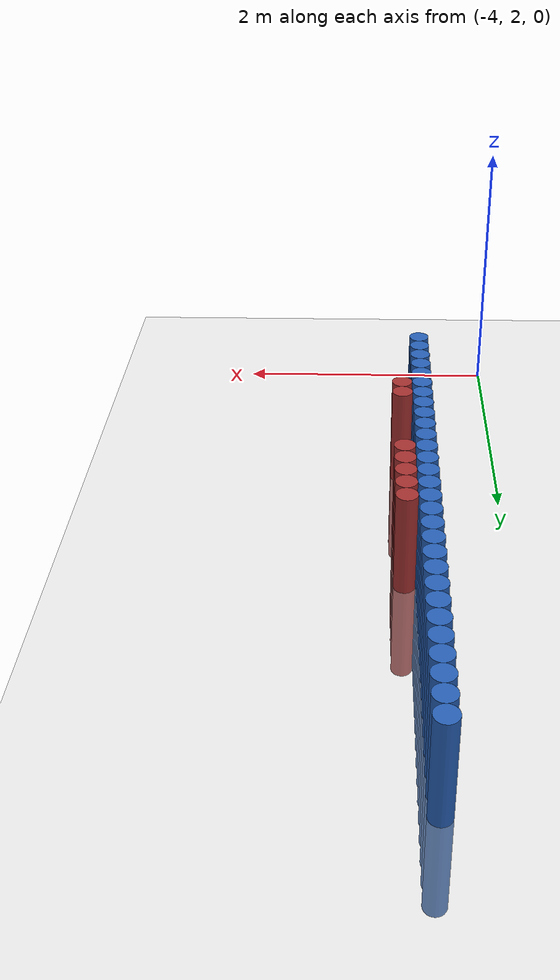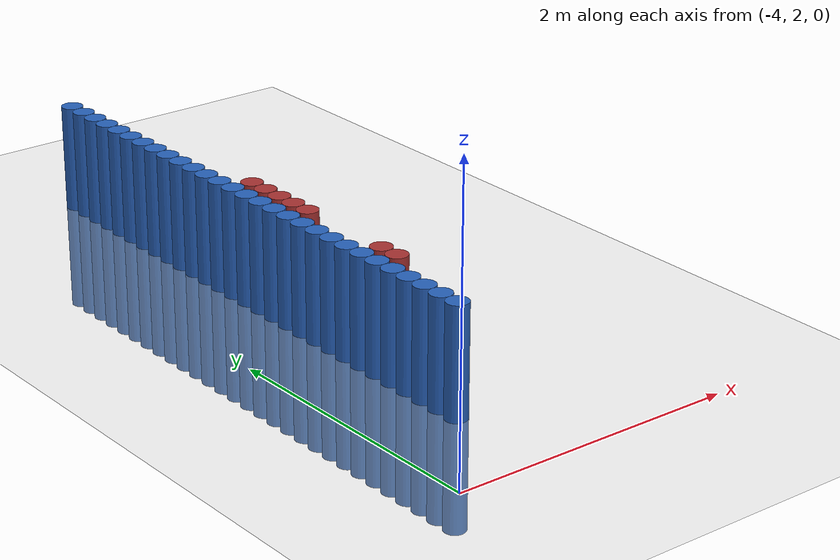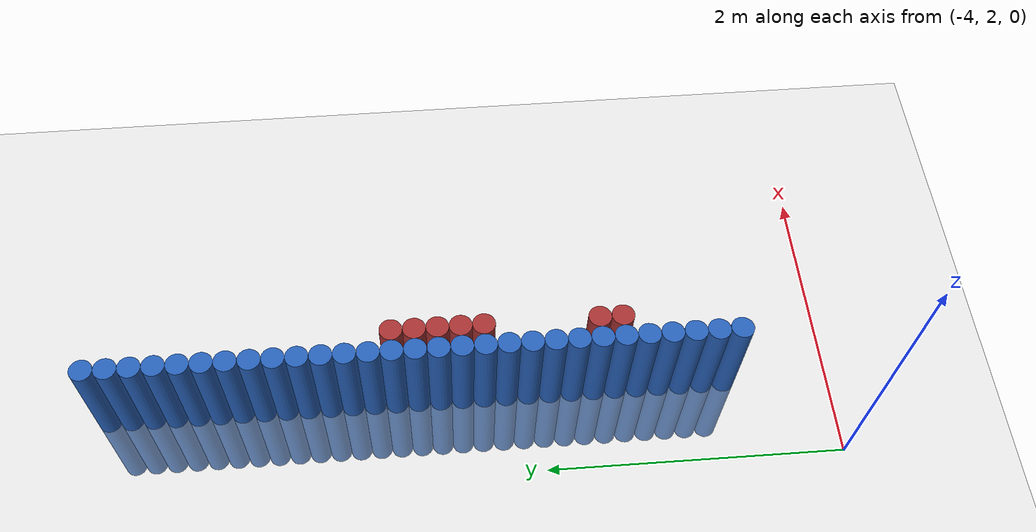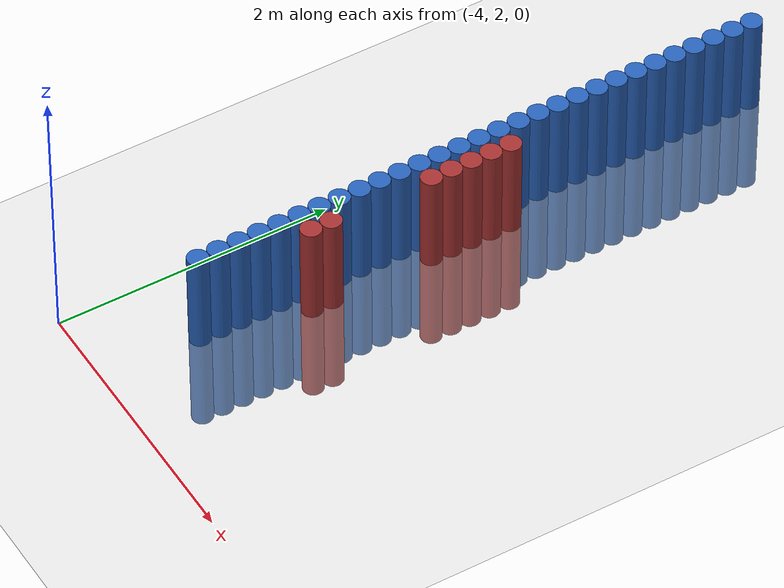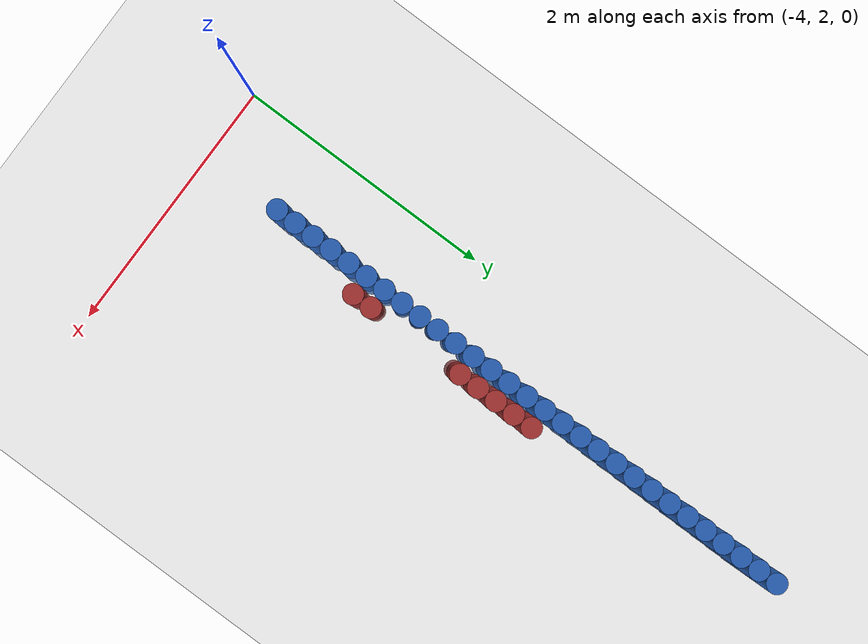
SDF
<sdf version="1.6">
 <world name="default">
  <model name="ground_plane">
   <static>1</static>
   <link name="link">
    <collision name="collision">
     <geometry><plane><normal>0 0 1</normal><size>100 100</size></plane></geometry>
     <surface><friction><ode><mu>100</mu><mu2>50</mu2></ode></friction></surface>
    </collision>
    <visual name="visual">
     <cast_shadows>0</cast_shadows>
     <geometry><plane><normal>0 0 1</normal><size>100 100</size></plane></geometry>
     <material>
      <script><uri>file://media/materials/scripts/gazebo.material</uri><name>Gazebo/Grey</name></script>
     </material>
    </visual>
   </link>
  </model>
  <model name="unit_cylinder_153">
   <static>1</static>
   <pose>-3.425000 2.875000 0.000000 0.000000 0.000000 0.000000</pose>
   <link name="link">
    <inertial>
     <mass>1</mass>
     <inertia><ixx>0.145833</ixx><ixy>0</ixy><ixz>0</ixz><iyy>0.145833</iyy><iyz>0</iyz><izz>0.125</izz></inertia>
    </inertial>
    <collision name="collision">
     <geometry><cylinder><radius>0.075000</radius><length>1.5</length></cylinder></geometry>
    </collision>
    <visual name="visual">
     <geometry><cylinder><radius>0.075000</radius><length>1.5</length></cylinder></geometry>
     <material>
      <ambient>0.152000 0.379000 0.720000 1</ambient>
      <diffuse>0.152000 0.379000 0.720000 1</diffuse>
     </material>
     <material>
      <script><name>Gazebo/Grey</name><uri>file://media/materials/scripts/gazebo.material</uri></script>
     </material>
    </visual>
   </link>
  </model>
  <model name="unit_cylinder_155">
   <static>1</static>
   <pose>-3.425000 3.025000 0.000000 0.000000 0.000000 0.000000</pose>
   <link name="link">
    <inertial>
     <mass>1</mass>
     <inertia><ixx>0.145833</ixx><ixy>0</ixy><ixz>0</ixz><iyy>0.145833</iyy><iyz>0</iyz><izz>0.125</izz></inertia>
    </inertial>
    <collision name="collision">
     <geometry><cylinder><radius>0.075000</radius><length>1.5</length></cylinder></geometry>
    </collision>
    <visual name="visual">
     <geometry><cylinder><radius>0.075000</radius><length>1.5</length></cylinder></geometry>
     <material>
      <ambient>0.152000 0.379000 0.720000 1</ambient>
      <diffuse>0.152000 0.379000 0.720000 1</diffuse>
     </material>
     <material>
      <script><name>Gazebo/Grey</name><uri>file://media/materials/scripts/gazebo.material</uri></script>
     </material>
    </visual>
   </link>
  </model>
  <model name="unit_cylinder_157">
   <static>1</static>
   <pose>-3.425000 3.175000 0.000000 0.000000 0.000000 0.000000</pose>
   <link name="link">
    <inertial>
     <mass>1</mass>
     <inertia><ixx>0.145833</ixx><ixy>0</ixy><ixz>0</ixz><iyy>0.145833</iyy><iyz>0</iyz><izz>0.125</izz></inertia>
    </inertial>
    <collision name="collision">
     <geometry><cylinder><radius>0.075000</radius><length>1.5</length></cylinder></geometry>
    </collision>
    <visual name="visual">
     <geometry><cylinder><radius>0.075000</radius><length>1.5</length></cylinder></geometry>
     <material>
      <ambient>0.152000 0.379000 0.720000 1</ambient>
      <diffuse>0.152000 0.379000 0.720000 1</diffuse>
     </material>
     <material>
      <script><name>Gazebo/Grey</name><uri>file://media/materials/scripts/gazebo.material</uri></script>
     </material>
    </visual>
   </link>
  </model>
  <model name="unit_cylinder_159">
   <static>1</static>
   <pose>-3.425000 3.325000 0.000000 0.000000 0.000000 0.000000</pose>
   <link name="link">
    <inertial>
     <mass>1</mass>
     <inertia><ixx>0.145833</ixx><ixy>0</ixy><ixz>0</ixz><iyy>0.145833</iyy><iyz>0</iyz><izz>0.125</izz></inertia>
    </inertial>
    <collision name="collision">
     <geometry><cylinder><radius>0.075000</radius><length>1.5</length></cylinder></geometry>
    </collision>
    <visual name="visual">
     <geometry><cylinder><radius>0.075000</radius><length>1.5</length></cylinder></geometry>
     <material>
      <ambient>0.152000 0.379000 0.720000 1</ambient>
      <diffuse>0.152000 0.379000 0.720000 1</diffuse>
     </material>
     <material>
      <script><name>Gazebo/Grey</name><uri>file://media/materials/scripts/gazebo.material</uri></script>
     </material>
    </visual>
   </link>
  </model>
  <model name="unit_cylinder_161">
   <static>1</static>
   <pose>-3.425000 3.475000 0.000000 0.000000 0.000000 0.000000</pose>
   <link name="link">
    <inertial>
     <mass>1</mass>
     <inertia><ixx>0.145833</ixx><ixy>0</ixy><ixz>0</ixz><iyy>0.145833</iyy><iyz>0</iyz><izz>0.125</izz></inertia>
    </inertial>
    <collision name="collision">
     <geometry><cylinder><radius>0.075000</radius><length>1.5</length></cylinder></geometry>
    </collision>
    <visual name="visual">
     <geometry><cylinder><radius>0.075000</radius><length>1.5</length></cylinder></geometry>
     <material>
      <ambient>0.152000 0.379000 0.720000 1</ambient>
      <diffuse>0.152000 0.379000 0.720000 1</diffuse>
     </material>
     <material>
      <script><name>Gazebo/Grey</name><uri>file://media/materials/scripts/gazebo.material</uri></script>
     </material>
    </visual>
   </link>
  </model>
  <model name="unit_cylinder_163">
   <static>1</static>
   <pose>-3.425000 3.625000 0.000000 0.000000 0.000000 0.000000</pose>
   <link name="link">
    <inertial>
     <mass>1</mass>
     <inertia><ixx>0.145833</ixx><ixy>0</ixy><ixz>0</ixz><iyy>0.145833</iyy><iyz>0</iyz><izz>0.125</izz></inertia>
    </inertial>
    <collision name="collision">
     <geometry><cylinder><radius>0.075000</radius><length>1.5</length></cylinder></geometry>
    </collision>
    <visual name="visual">
     <geometry><cylinder><radius>0.075000</radius><length>1.5</length></cylinder></geometry>
     <material>
      <ambient>0.152000 0.379000 0.720000 1</ambient>
      <diffuse>0.152000 0.379000 0.720000 1</diffuse>
     </material>
     <material>
      <script><name>Gazebo/Grey</name><uri>file://media/materials/scripts/gazebo.material</uri></script>
     </material>
    </visual>
   </link>
  </model>
  <model name="unit_cylinder_165">
   <static>1</static>
   <pose>-3.425000 3.775000 0.000000 0.000000 0.000000 0.000000</pose>
   <link name="link">
    <inertial>
     <mass>1</mass>
     <inertia><ixx>0.145833</ixx><ixy>0</ixy><ixz>0</ixz><iyy>0.145833</iyy><iyz>0</iyz><izz>0.125</izz></inertia>
    </inertial>
    <collision name="collision">
     <geometry><cylinder><radius>0.075000</radius><length>1.5</length></cylinder></geometry>
    </collision>
    <visual name="visual">
     <geometry><cylinder><radius>0.075000</radius><length>1.5</length></cylinder></geometry>
     <material>
      <ambient>0.152000 0.379000 0.720000 1</ambient>
      <diffuse>0.152000 0.379000 0.720000 1</diffuse>
     </material>
     <material>
      <script><name>Gazebo/Grey</name><uri>file://media/materials/scripts/gazebo.material</uri></script>
     </material>
    </visual>
   </link>
  </model>
  <model name="unit_cylinder_167">
   <static>1</static>
   <pose>-3.425000 3.925000 0.000000 0.000000 0.000000 0.000000</pose>
   <link name="link">
    <inertial>
     <mass>1</mass>
     <inertia><ixx>0.145833</ixx><ixy>0</ixy><ixz>0</ixz><iyy>0.145833</iyy><iyz>0</iyz><izz>0.125</izz></inertia>
    </inertial>
    <collision name="collision">
     <geometry><cylinder><radius>0.075000</radius><length>1.5</length></cylinder></geometry>
    </collision>
    <visual name="visual">
     <geometry><cylinder><radius>0.075000</radius><length>1.5</length></cylinder></geometry>
     <material>
      <ambient>0.152000 0.379000 0.720000 1</ambient>
      <diffuse>0.152000 0.379000 0.720000 1</diffuse>
     </material>
     <material>
      <script><name>Gazebo/Grey</name><uri>file://media/materials/scripts/gazebo.material</uri></script>
     </material>
    </visual>
   </link>
  </model>
  <model name="unit_cylinder_169">
   <static>1</static>
   <pose>-3.425000 4.075000 0.000000 0.000000 0.000000 0.000000</pose>
   <link name="link">
    <inertial>
     <mass>1</mass>
     <inertia><ixx>0.145833</ixx><ixy>0</ixy><ixz>0</ixz><iyy>0.145833</iyy><iyz>0</iyz><izz>0.125</izz></inertia>
    </inertial>
    <collision name="collision">
     <geometry><cylinder><radius>0.075000</radius><length>1.5</length></cylinder></geometry>
    </collision>
    <visual name="visual">
     <geometry><cylinder><radius>0.075000</radius><length>1.5</length></cylinder></geometry>
     <material>
      <ambient>0.152000 0.379000 0.720000 1</ambient>
      <diffuse>0.152000 0.379000 0.720000 1</diffuse>
     </material>
     <material>
      <script><name>Gazebo/Grey</name><uri>file://media/materials/scripts/gazebo.material</uri></script>
     </material>
    </visual>
   </link>
  </model>
  <model name="unit_cylinder_171">
   <static>1</static>
   <pose>-3.425000 4.225000 0.000000 0.000000 0.000000 0.000000</pose>
   <link name="link">
    <inertial>
     <mass>1</mass>
     <inertia><ixx>0.145833</ixx><ixy>0</ixy><ixz>0</ixz><iyy>0.145833</iyy><iyz>0</iyz><izz>0.125</izz></inertia>
    </inertial>
    <collision name="collision">
     <geometry><cylinder><radius>0.075000</radius><length>1.5</length></cylinder></geometry>
    </collision>
    <visual name="visual">
     <geometry><cylinder><radius>0.075000</radius><length>1.5</length></cylinder></geometry>
     <material>
      <ambient>0.152000 0.379000 0.720000 1</ambient>
      <diffuse>0.152000 0.379000 0.720000 1</diffuse>
     </material>
     <material>
      <script><name>Gazebo/Grey</name><uri>file://media/materials/scripts/gazebo.material</uri></script>
     </material>
    </visual>
   </link>
  </model>
  <model name="unit_cylinder_173">
   <static>1</static>
   <pose>-3.425000 4.375000 0.000000 0.000000 0.000000 0.000000</pose>
   <link name="link">
    <inertial>
     <mass>1</mass>
     <inertia><ixx>0.145833</ixx><ixy>0</ixy><ixz>0</ixz><iyy>0.145833</iyy><iyz>0</iyz><izz>0.125</izz></inertia>
    </inertial>
    <collision name="collision">
     <geometry><cylinder><radius>0.075000</radius><length>1.5</length></cylinder></geometry>
    </collision>
    <visual name="visual">
     <geometry><cylinder><radius>0.075000</radius><length>1.5</length></cylinder></geometry>
     <material>
      <ambient>0.152000 0.379000 0.720000 1</ambient>
      <diffuse>0.152000 0.379000 0.720000 1</diffuse>
     </material>
     <material>
      <script><name>Gazebo/Grey</name><uri>file://media/materials/scripts/gazebo.material</uri></script>
     </material>
    </visual>
   </link>
  </model>
  <model name="unit_cylinder_175">
   <static>1</static>
   <pose>-3.425000 4.525000 0.000000 0.000000 0.000000 0.000000</pose>
   <link name="link">
    <inertial>
     <mass>1</mass>
     <inertia><ixx>0.145833</ixx><ixy>0</ixy><ixz>0</ixz><iyy>0.145833</iyy><iyz>0</iyz><izz>0.125</izz></inertia>
    </inertial>
    <collision name="collision">
     <geometry><cylinder><radius>0.075000</radius><length>1.5</length></cylinder></geometry>
    </collision>
    <visual name="visual">
     <geometry><cylinder><radius>0.075000</radius><length>1.5</length></cylinder></geometry>
     <material>
      <ambient>0.152000 0.379000 0.720000 1</ambient>
      <diffuse>0.152000 0.379000 0.720000 1</diffuse>
     </material>
     <material>
      <script><name>Gazebo/Grey</name><uri>file://media/materials/scripts/gazebo.material</uri></script>
     </material>
    </visual>
   </link>
  </model>
  <model name="unit_cylinder_177">
   <static>1</static>
   <pose>-3.425000 4.675000 0.000000 0.000000 0.000000 0.000000</pose>
   <link name="link">
    <inertial>
     <mass>1</mass>
     <inertia><ixx>0.145833</ixx><ixy>0</ixy><ixz>0</ixz><iyy>0.145833</iyy><iyz>0</iyz><izz>0.125</izz></inertia>
    </inertial>
    <collision name="collision">
     <geometry><cylinder><radius>0.075000</radius><length>1.5</length></cylinder></geometry>
    </collision>
    <visual name="visual">
     <geometry><cylinder><radius>0.075000</radius><length>1.5</length></cylinder></geometry>
     <material>
      <ambient>0.152000 0.379000 0.720000 1</ambient>
      <diffuse>0.152000 0.379000 0.720000 1</diffuse>
     </material>
     <material>
      <script><name>Gazebo/Grey</name><uri>file://media/materials/scripts/gazebo.material</uri></script>
     </material>
    </visual>
   </link>
  </model>
  <model name="unit_cylinder_179">
   <static>1</static>
   <pose>-3.425000 4.825000 0.000000 0.000000 0.000000 0.000000</pose>
   <link name="link">
    <inertial>
     <mass>1</mass>
     <inertia><ixx>0.145833</ixx><ixy>0</ixy><ixz>0</ixz><iyy>0.145833</iyy><iyz>0</iyz><izz>0.125</izz></inertia>
    </inertial>
    <collision name="collision">
     <geometry><cylinder><radius>0.075000</radius><length>1.5</length></cylinder></geometry>
    </collision>
    <visual name="visual">
     <geometry><cylinder><radius>0.075000</radius><length>1.5</length></cylinder></geometry>
     <material>
      <ambient>0.152000 0.379000 0.720000 1</ambient>
      <diffuse>0.152000 0.379000 0.720000 1</diffuse>
     </material>
     <material>
      <script><name>Gazebo/Grey</name><uri>file://media/materials/scripts/gazebo.material</uri></script>
     </material>
    </visual>
   </link>
  </model>
  <model name="unit_cylinder_181">
   <static>1</static>
   <pose>-3.425000 4.975000 0.000000 0.000000 0.000000 0.000000</pose>
   <link name="link">
    <inertial>
     <mass>1</mass>
     <inertia><ixx>0.145833</ixx><ixy>0</ixy><ixz>0</ixz><iyy>0.145833</iyy><iyz>0</iyz><izz>0.125</izz></inertia>
    </inertial>
    <collision name="collision">
     <geometry><cylinder><radius>0.075000</radius><length>1.5</length></cylinder></geometry>
    </collision>
    <visual name="visual">
     <geometry><cylinder><radius>0.075000</radius><length>1.5</length></cylinder></geometry>
     <material>
      <ambient>0.152000 0.379000 0.720000 1</ambient>
      <diffuse>0.152000 0.379000 0.720000 1</diffuse>
     </material>
     <material>
      <script><name>Gazebo/Grey</name><uri>file://media/materials/scripts/gazebo.material</uri></script>
     </material>
    </visual>
   </link>
  </model>
  <model name="unit_cylinder_183">
   <static>1</static>
   <pose>-3.425000 5.125000 0.000000 0.000000 0.000000 0.000000</pose>
   <link name="link">
    <inertial>
     <mass>1</mass>
     <inertia><ixx>0.145833</ixx><ixy>0</ixy><ixz>0</ixz><iyy>0.145833</iyy><iyz>0</iyz><izz>0.125</izz></inertia>
    </inertial>
    <collision name="collision">
     <geometry><cylinder><radius>0.075000</radius><length>1.5</length></cylinder></geometry>
    </collision>
    <visual name="visual">
     <geometry><cylinder><radius>0.075000</radius><length>1.5</length></cylinder></geometry>
     <material>
      <ambient>0.152000 0.379000 0.720000 1</ambient>
      <diffuse>0.152000 0.379000 0.720000 1</diffuse>
     </material>
     <material>
      <script><name>Gazebo/Grey</name><uri>file://media/materials/scripts/gazebo.material</uri></script>
     </material>
    </visual>
   </link>
  </model>
  <model name="unit_cylinder_185">
   <static>1</static>
   <pose>-3.425000 5.275000 0.000000 0.000000 0.000000 0.000000</pose>
   <link name="link">
    <inertial>
     <mass>1</mass>
     <inertia><ixx>0.145833</ixx><ixy>0</ixy><ixz>0</ixz><iyy>0.145833</iyy><iyz>0</iyz><izz>0.125</izz></inertia>
    </inertial>
    <collision name="collision">
     <geometry><cylinder><radius>0.075000</radius><length>1.5</length></cylinder></geometry>
    </collision>
    <visual name="visual">
     <geometry><cylinder><radius>0.075000</radius><length>1.5</length></cylinder></geometry>
     <material>
      <ambient>0.152000 0.379000 0.720000 1</ambient>
      <diffuse>0.152000 0.379000 0.720000 1</diffuse>
     </material>
     <material>
      <script><name>Gazebo/Grey</name><uri>file://media/materials/scripts/gazebo.material</uri></script>
     </material>
    </visual>
   </link>
  </model>
  <model name="unit_cylinder_187">
   <static>1</static>
   <pose>-3.425000 5.425000 0.000000 0.000000 0.000000 0.000000</pose>
   <link name="link">
    <inertial>
     <mass>1</mass>
     <inertia><ixx>0.145833</ixx><ixy>0</ixy><ixz>0</ixz><iyy>0.145833</iyy><iyz>0</iyz><izz>0.125</izz></inertia>
    </inertial>
    <collision name="collision">
     <geometry><cylinder><radius>0.075000</radius><length>1.5</length></cylinder></geometry>
    </collision>
    <visual name="visual">
     <geometry><cylinder><radius>0.075000</radius><length>1.5</length></cylinder></geometry>
     <material>
      <ambient>0.152000 0.379000 0.720000 1</ambient>
      <diffuse>0.152000 0.379000 0.720000 1</diffuse>
     </material>
     <material>
      <script><name>Gazebo/Grey</name><uri>file://media/materials/scripts/gazebo.material</uri></script>
     </material>
    </visual>
   </link>
  </model>
  <model name="unit_cylinder_189">
   <static>1</static>
   <pose>-3.425000 5.575000 0.000000 0.000000 0.000000 0.000000</pose>
   <link name="link">
    <inertial>
     <mass>1</mass>
     <inertia><ixx>0.145833</ixx><ixy>0</ixy><ixz>0</ixz><iyy>0.145833</iyy><iyz>0</iyz><izz>0.125</izz></inertia>
    </inertial>
    <collision name="collision">
     <geometry><cylinder><radius>0.075000</radius><length>1.5</length></cylinder></geometry>
    </collision>
    <visual name="visual">
     <geometry><cylinder><radius>0.075000</radius><length>1.5</length></cylinder></geometry>
     <material>
      <ambient>0.152000 0.379000 0.720000 1</ambient>
      <diffuse>0.152000 0.379000 0.720000 1</diffuse>
     </material>
     <material>
      <script><name>Gazebo/Grey</name><uri>file://media/materials/scripts/gazebo.material</uri></script>
     </material>
    </visual>
   </link>
  </model>
  <model name="unit_cylinder_191">
   <static>1</static>
   <pose>-3.425000 5.725000 0.000000 0.000000 0.000000 0.000000</pose>
   <link name="link">
    <inertial>
     <mass>1</mass>
     <inertia><ixx>0.145833</ixx><ixy>0</ixy><ixz>0</ixz><iyy>0.145833</iyy><iyz>0</iyz><izz>0.125</izz></inertia>
    </inertial>
    <collision name="collision">
     <geometry><cylinder><radius>0.075000</radius><length>1.5</length></cylinder></geometry>
    </collision>
    <visual name="visual">
     <geometry><cylinder><radius>0.075000</radius><length>1.5</length></cylinder></geometry>
     <material>
      <ambient>0.152000 0.379000 0.720000 1</ambient>
      <diffuse>0.152000 0.379000 0.720000 1</diffuse>
     </material>
     <material>
      <script><name>Gazebo/Grey</name><uri>file://media/materials/scripts/gazebo.material</uri></script>
     </material>
    </visual>
   </link>
  </model>
  <model name="unit_cylinder_193">
   <static>1</static>
   <pose>-3.425000 5.875000 0.000000 0.000000 0.000000 0.000000</pose>
   <link name="link">
    <inertial>
     <mass>1</mass>
     <inertia><ixx>0.145833</ixx><ixy>0</ixy><ixz>0</ixz><iyy>0.145833</iyy><iyz>0</iyz><izz>0.125</izz></inertia>
    </inertial>
    <collision name="collision">
     <geometry><cylinder><radius>0.075000</radius><length>1.5</length></cylinder></geometry>
    </collision>
    <visual name="visual">
     <geometry><cylinder><radius>0.075000</radius><length>1.5</length></cylinder></geometry>
     <material>
      <ambient>0.152000 0.379000 0.720000 1</ambient>
      <diffuse>0.152000 0.379000 0.720000 1</diffuse>
     </material>
     <material>
      <script><name>Gazebo/Grey</name><uri>file://media/materials/scripts/gazebo.material</uri></script>
     </material>
    </visual>
   </link>
  </model>
  <model name="unit_cylinder_195">
   <static>1</static>
   <pose>-3.425000 6.025000 0.000000 0.000000 0.000000 0.000000</pose>
   <link name="link">
    <inertial>
     <mass>1</mass>
     <inertia><ixx>0.145833</ixx><ixy>0</ixy><ixz>0</ixz><iyy>0.145833</iyy><iyz>0</iyz><izz>0.125</izz></inertia>
    </inertial>
    <collision name="collision">
     <geometry><cylinder><radius>0.075000</radius><length>1.5</length></cylinder></geometry>
    </collision>
    <visual name="visual">
     <geometry><cylinder><radius>0.075000</radius><length>1.5</length></cylinder></geometry>
     <material>
      <ambient>0.152000 0.379000 0.720000 1</ambient>
      <diffuse>0.152000 0.379000 0.720000 1</diffuse>
     </material>
     <material>
      <script><name>Gazebo/Grey</name><uri>file://media/materials/scripts/gazebo.material</uri></script>
     </material>
    </visual>
   </link>
  </model>
  <model name="unit_cylinder_197">
   <static>1</static>
   <pose>-3.425000 6.175000 0.000000 0.000000 0.000000 0.000000</pose>
   <link name="link">
    <inertial>
     <mass>1</mass>
     <inertia><ixx>0.145833</ixx><ixy>0</ixy><ixz>0</ixz><iyy>0.145833</iyy><iyz>0</iyz><izz>0.125</izz></inertia>
    </inertial>
    <collision name="collision">
     <geometry><cylinder><radius>0.075000</radius><length>1.5</length></cylinder></geometry>
    </collision>
    <visual name="visual">
     <geometry><cylinder><radius>0.075000</radius><length>1.5</length></cylinder></geometry>
     <material>
      <ambient>0.152000 0.379000 0.720000 1</ambient>
      <diffuse>0.152000 0.379000 0.720000 1</diffuse>
     </material>
     <material>
      <script><name>Gazebo/Grey</name><uri>file://media/materials/scripts/gazebo.material</uri></script>
     </material>
    </visual>
   </link>
  </model>
  <model name="unit_cylinder_199">
   <static>1</static>
   <pose>-3.425000 6.325000 0.000000 0.000000 0.000000 0.000000</pose>
   <link name="link">
    <inertial>
     <mass>1</mass>
     <inertia><ixx>0.145833</ixx><ixy>0</ixy><ixz>0</ixz><iyy>0.145833</iyy><iyz>0</iyz><izz>0.125</izz></inertia>
    </inertial>
    <collision name="collision">
     <geometry><cylinder><radius>0.075000</radius><length>1.5</length></cylinder></geometry>
    </collision>
    <visual name="visual">
     <geometry><cylinder><radius>0.075000</radius><length>1.5</length></cylinder></geometry>
     <material>
      <ambient>0.152000 0.379000 0.720000 1</ambient>
      <diffuse>0.152000 0.379000 0.720000 1</diffuse>
     </material>
     <material>
      <script><name>Gazebo/Grey</name><uri>file://media/materials/scripts/gazebo.material</uri></script>
     </material>
    </visual>
   </link>
  </model>
  <model name="unit_cylinder_201">
   <static>1</static>
   <pose>-3.425000 6.475000 0.000000 0.000000 0.000000 0.000000</pose>
   <link name="link">
    <inertial>
     <mass>1</mass>
     <inertia><ixx>0.145833</ixx><ixy>0</ixy><ixz>0</ixz><iyy>0.145833</iyy><iyz>0</iyz><izz>0.125</izz></inertia>
    </inertial>
    <collision name="collision">
     <geometry><cylinder><radius>0.075000</radius><length>1.5</length></cylinder></geometry>
    </collision>
    <visual name="visual">
     <geometry><cylinder><radius>0.075000</radius><length>1.5</length></cylinder></geometry>
     <material>
      <ambient>0.152000 0.379000 0.720000 1</ambient>
      <diffuse>0.152000 0.379000 0.720000 1</diffuse>
     </material>
     <material>
      <script><name>Gazebo/Grey</name><uri>file://media/materials/scripts/gazebo.material</uri></script>
     </material>
    </visual>
   </link>
  </model>
  <model name="unit_cylinder_203">
   <static>1</static>
   <pose>-3.425000 6.625000 0.000000 0.000000 0.000000 0.000000</pose>
   <link name="link">
    <inertial>
     <mass>1</mass>
     <inertia><ixx>0.145833</ixx><ixy>0</ixy><ixz>0</ixz><iyy>0.145833</iyy><iyz>0</iyz><izz>0.125</izz></inertia>
    </inertial>
    <collision name="collision">
     <geometry><cylinder><radius>0.075000</radius><length>1.5</length></cylinder></geometry>
    </collision>
    <visual name="visual">
     <geometry><cylinder><radius>0.075000</radius><length>1.5</length></cylinder></geometry>
     <material>
      <ambient>0.152000 0.379000 0.720000 1</ambient>
      <diffuse>0.152000 0.379000 0.720000 1</diffuse>
     </material>
     <material>
      <script><name>Gazebo/Grey</name><uri>file://media/materials/scripts/gazebo.material</uri></script>
     </material>
    </visual>
   </link>
  </model>
  <model name="unit_cylinder_205">
   <static>1</static>
   <pose>-3.425000 6.775000 0.000000 0.000000 0.000000 0.000000</pose>
   <link name="link">
    <inertial>
     <mass>1</mass>
     <inertia><ixx>0.145833</ixx><ixy>0</ixy><ixz>0</ixz><iyy>0.145833</iyy><iyz>0</iyz><izz>0.125</izz></inertia>
    </inertial>
    <collision name="collision">
     <geometry><cylinder><radius>0.075000</radius><length>1.5</length></cylinder></geometry>
    </collision>
    <visual name="visual">
     <geometry><cylinder><radius>0.075000</radius><length>1.5</length></cylinder></geometry>
     <material>
      <ambient>0.152000 0.379000 0.720000 1</ambient>
      <diffuse>0.152000 0.379000 0.720000 1</diffuse>
     </material>
     <material>
      <script><name>Gazebo/Grey</name><uri>file://media/materials/scripts/gazebo.material</uri></script>
     </material>
    </visual>
   </link>
  </model>
  <model name="unit_cylinder_207">
   <static>1</static>
   <pose>-3.425000 6.925000 0.000000 0.000000 0.000000 0.000000</pose>
   <link name="link">
    <inertial>
     <mass>1</mass>
     <inertia><ixx>0.145833</ixx><ixy>0</ixy><ixz>0</ixz><iyy>0.145833</iyy><iyz>0</iyz><izz>0.125</izz></inertia>
    </inertial>
    <collision name="collision">
     <geometry><cylinder><radius>0.075000</radius><length>1.5</length></cylinder></geometry>
    </collision>
    <visual name="visual">
     <geometry><cylinder><radius>0.075000</radius><length>1.5</length></cylinder></geometry>
     <material>
      <ambient>0.152000 0.379000 0.720000 1</ambient>
      <diffuse>0.152000 0.379000 0.720000 1</diffuse>
     </material>
     <material>
      <script><name>Gazebo/Grey</name><uri>file://media/materials/scripts/gazebo.material</uri></script>
     </material>
    </visual>
   </link>
  </model>
  <model name="unit_cylinder_239">
   <static>1</static>
   <pose>-3.425000 2.725000 0.000000 0.000000 0.000000 0.000000</pose>
   <link name="link">
    <inertial>
     <mass>1</mass>
     <inertia><ixx>0.145833</ixx><ixy>0</ixy><ixz>0</ixz><iyy>0.145833</iyy><iyz>0</iyz><izz>0.125</izz></inertia>
    </inertial>
    <collision name="collision">
     <geometry><cylinder><radius>0.075000</radius><length>1.5</length></cylinder></geometry>
    </collision>
    <visual name="visual">
     <geometry><cylinder><radius>0.075000</radius><length>1.5</length></cylinder></geometry>
     <material>
      <ambient>0.152000 0.379000 0.720000 1</ambient>
      <diffuse>0.152000 0.379000 0.720000 1</diffuse>
     </material>
     <material>
      <script><name>Gazebo/Grey</name><uri>file://media/materials/scripts/gazebo.material</uri></script>
     </material>
    </visual>
   </link>
  </model>
  <model name="unit_cylinder_240">
   <static>1</static>
   <pose>-3.425000 2.875000 0.000000 0.000000 0.000000 0.000000</pose>
   <link name="link">
    <inertial>
     <mass>1</mass>
     <inertia><ixx>0.145833</ixx><ixy>0</ixy><ixz>0</ixz><iyy>0.145833</iyy><iyz>0</iyz><izz>0.125</izz></inertia>
    </inertial>
    <collision name="collision">
     <geometry><cylinder><radius>0.075000</radius><length>1.5</length></cylinder></geometry>
    </collision>
    <visual name="visual">
     <geometry><cylinder><radius>0.075000</radius><length>1.5</length></cylinder></geometry>
     <material>
      <ambient>0.152000 0.379000 0.720000 1</ambient>
      <diffuse>0.152000 0.379000 0.720000 1</diffuse>
     </material>
     <material>
      <script><name>Gazebo/Grey</name><uri>file://media/materials/scripts/gazebo.material</uri></script>
     </material>
    </visual>
   </link>
  </model>
  <model name="unit_cylinder_241">
   <static>1</static>
   <pose>-3.425000 3.025000 0.000000 0.000000 0.000000 0.000000</pose>
   <link name="link">
    <inertial>
     <mass>1</mass>
     <inertia><ixx>0.145833</ixx><ixy>0</ixy><ixz>0</ixz><iyy>0.145833</iyy><iyz>0</iyz><izz>0.125</izz></inertia>
    </inertial>
    <collision name="collision">
     <geometry><cylinder><radius>0.075000</radius><length>1.5</length></cylinder></geometry>
    </collision>
    <visual name="visual">
     <geometry><cylinder><radius>0.075000</radius><length>1.5</length></cylinder></geometry>
     <material>
      <ambient>0.152000 0.379000 0.720000 1</ambient>
      <diffuse>0.152000 0.379000 0.720000 1</diffuse>
     </material>
     <material>
      <script><name>Gazebo/Grey</name><uri>file://media/materials/scripts/gazebo.material</uri></script>
     </material>
    </visual>
   </link>
  </model>
  <model name="unit_cylinder_242">
   <static>1</static>
   <pose>-3.425000 3.175000 0.000000 0.000000 0.000000 0.000000</pose>
   <link name="link">
    <inertial>
     <mass>1</mass>
     <inertia><ixx>0.145833</ixx><ixy>0</ixy><ixz>0</ixz><iyy>0.145833</iyy><iyz>0</iyz><izz>0.125</izz></inertia>
    </inertial>
    <collision name="collision">
     <geometry><cylinder><radius>0.075000</radius><length>1.5</length></cylinder></geometry>
    </collision>
    <visual name="visual">
     <geometry><cylinder><radius>0.075000</radius><length>1.5</length></cylinder></geometry>
     <material>
      <ambient>0.152000 0.379000 0.720000 1</ambient>
      <diffuse>0.152000 0.379000 0.720000 1</diffuse>
     </material>
     <material>
      <script><name>Gazebo/Grey</name><uri>file://media/materials/scripts/gazebo.material</uri></script>
     </material>
    </visual>
   </link>
  </model>
  <model name="unit_cylinder_243">
   <static>1</static>
   <pose>-3.425000 3.325000 0.000000 0.000000 0.000000 0.000000</pose>
   <link name="link">
    <inertial>
     <mass>1</mass>
     <inertia><ixx>0.145833</ixx><ixy>0</ixy><ixz>0</ixz><iyy>0.145833</iyy><iyz>0</iyz><izz>0.125</izz></inertia>
    </inertial>
    <collision name="collision">
     <geometry><cylinder><radius>0.075000</radius><length>1.5</length></cylinder></geometry>
    </collision>
    <visual name="visual">
     <geometry><cylinder><radius>0.075000</radius><length>1.5</length></cylinder></geometry>
     <material>
      <ambient>0.152000 0.379000 0.720000 1</ambient>
      <diffuse>0.152000 0.379000 0.720000 1</diffuse>
     </material>
     <material>
      <script><name>Gazebo/Grey</name><uri>file://media/materials/scripts/gazebo.material</uri></script>
     </material>
    </visual>
   </link>
  </model>
  <model name="unit_cylinder_244">
   <static>1</static>
   <pose>-3.425000 3.475000 0.000000 0.000000 0.000000 0.000000</pose>
   <link name="link">
    <inertial>
     <mass>1</mass>
     <inertia><ixx>0.145833</ixx><ixy>0</ixy><ixz>0</ixz><iyy>0.145833</iyy><iyz>0</iyz><izz>0.125</izz></inertia>
    </inertial>
    <collision name="collision">
     <geometry><cylinder><radius>0.075000</radius><length>1.5</length></cylinder></geometry>
    </collision>
    <visual name="visual">
     <geometry><cylinder><radius>0.075000</radius><length>1.5</length></cylinder></geometry>
     <material>
      <ambient>0.152000 0.379000 0.720000 1</ambient>
      <diffuse>0.152000 0.379000 0.720000 1</diffuse>
     </material>
     <material>
      <script><name>Gazebo/Grey</name><uri>file://media/materials/scripts/gazebo.material</uri></script>
     </material>
    </visual>
   </link>
  </model>
  <model name="unit_cylinder_245">
   <static>1</static>
   <pose>-3.425000 3.625000 0.000000 0.000000 0.000000 0.000000</pose>
   <link name="link">
    <inertial>
     <mass>1</mass>
     <inertia><ixx>0.145833</ixx><ixy>0</ixy><ixz>0</ixz><iyy>0.145833</iyy><iyz>0</iyz><izz>0.125</izz></inertia>
    </inertial>
    <collision name="collision">
     <geometry><cylinder><radius>0.075000</radius><length>1.5</length></cylinder></geometry>
    </collision>
    <visual name="visual">
     <geometry><cylinder><radius>0.075000</radius><length>1.5</length></cylinder></geometry>
     <material>
      <ambient>0.152000 0.379000 0.720000 1</ambient>
      <diffuse>0.152000 0.379000 0.720000 1</diffuse>
     </material>
     <material>
      <script><name>Gazebo/Grey</name><uri>file://media/materials/scripts/gazebo.material</uri></script>
     </material>
    </visual>
   </link>
  </model>
  <model name="unit_cylinder_246">
   <static>1</static>
   <pose>-3.425000 3.775000 0.000000 0.000000 0.000000 0.000000</pose>
   <link name="link">
    <inertial>
     <mass>1</mass>
     <inertia><ixx>0.145833</ixx><ixy>0</ixy><ixz>0</ixz><iyy>0.145833</iyy><iyz>0</iyz><izz>0.125</izz></inertia>
    </inertial>
    <collision name="collision">
     <geometry><cylinder><radius>0.075000</radius><length>1.5</length></cylinder></geometry>
    </collision>
    <visual name="visual">
     <geometry><cylinder><radius>0.075000</radius><length>1.5</length></cylinder></geometry>
     <material>
      <ambient>0.152000 0.379000 0.720000 1</ambient>
      <diffuse>0.152000 0.379000 0.720000 1</diffuse>
     </material>
     <material>
      <script><name>Gazebo/Grey</name><uri>file://media/materials/scripts/gazebo.material</uri></script>
     </material>
    </visual>
   </link>
  </model>
  <model name="unit_cylinder_247">
   <static>1</static>
   <pose>-3.425000 3.925000 0.000000 0.000000 0.000000 0.000000</pose>
   <link name="link">
    <inertial>
     <mass>1</mass>
     <inertia><ixx>0.145833</ixx><ixy>0</ixy><ixz>0</ixz><iyy>0.145833</iyy><iyz>0</iyz><izz>0.125</izz></inertia>
    </inertial>
    <collision name="collision">
     <geometry><cylinder><radius>0.075000</radius><length>1.5</length></cylinder></geometry>
    </collision>
    <visual name="visual">
     <geometry><cylinder><radius>0.075000</radius><length>1.5</length></cylinder></geometry>
     <material>
      <ambient>0.152000 0.379000 0.720000 1</ambient>
      <diffuse>0.152000 0.379000 0.720000 1</diffuse>
     </material>
     <material>
      <script><name>Gazebo/Grey</name><uri>file://media/materials/scripts/gazebo.material</uri></script>
     </material>
    </visual>
   </link>
  </model>
  <model name="unit_cylinder_248">
   <static>1</static>
   <pose>-3.425000 4.075000 0.000000 0.000000 0.000000 0.000000</pose>
   <link name="link">
    <inertial>
     <mass>1</mass>
     <inertia><ixx>0.145833</ixx><ixy>0</ixy><ixz>0</ixz><iyy>0.145833</iyy><iyz>0</iyz><izz>0.125</izz></inertia>
    </inertial>
    <collision name="collision">
     <geometry><cylinder><radius>0.075000</radius><length>1.5</length></cylinder></geometry>
    </collision>
    <visual name="visual">
     <geometry><cylinder><radius>0.075000</radius><length>1.5</length></cylinder></geometry>
     <material>
      <ambient>0.152000 0.379000 0.720000 1</ambient>
      <diffuse>0.152000 0.379000 0.720000 1</diffuse>
     </material>
     <material>
      <script><name>Gazebo/Grey</name><uri>file://media/materials/scripts/gazebo.material</uri></script>
     </material>
    </visual>
   </link>
  </model>
  <model name="unit_cylinder_249">
   <static>1</static>
   <pose>-3.425000 4.225000 0.000000 0.000000 0.000000 0.000000</pose>
   <link name="link">
    <inertial>
     <mass>1</mass>
     <inertia><ixx>0.145833</ixx><ixy>0</ixy><ixz>0</ixz><iyy>0.145833</iyy><iyz>0</iyz><izz>0.125</izz></inertia>
    </inertial>
    <collision name="collision">
     <geometry><cylinder><radius>0.075000</radius><length>1.5</length></cylinder></geometry>
    </collision>
    <visual name="visual">
     <geometry><cylinder><radius>0.075000</radius><length>1.5</length></cylinder></geometry>
     <material>
      <ambient>0.152000 0.379000 0.720000 1</ambient>
      <diffuse>0.152000 0.379000 0.720000 1</diffuse>
     </material>
     <material>
      <script><name>Gazebo/Grey</name><uri>file://media/materials/scripts/gazebo.material</uri></script>
     </material>
    </visual>
   </link>
  </model>
  <model name="unit_cylinder_250">
   <static>1</static>
   <pose>-3.425000 4.375000 0.000000 0.000000 0.000000 0.000000</pose>
   <link name="link">
    <inertial>
     <mass>1</mass>
     <inertia><ixx>0.145833</ixx><ixy>0</ixy><ixz>0</ixz><iyy>0.145833</iyy><iyz>0</iyz><izz>0.125</izz></inertia>
    </inertial>
    <collision name="collision">
     <geometry><cylinder><radius>0.075000</radius><length>1.5</length></cylinder></geometry>
    </collision>
    <visual name="visual">
     <geometry><cylinder><radius>0.075000</radius><length>1.5</length></cylinder></geometry>
     <material>
      <ambient>0.152000 0.379000 0.720000 1</ambient>
      <diffuse>0.152000 0.379000 0.720000 1</diffuse>
     </material>
     <material>
      <script><name>Gazebo/Grey</name><uri>file://media/materials/scripts/gazebo.material</uri></script>
     </material>
    </visual>
   </link>
  </model>
  <model name="unit_cylinder_251">
   <static>1</static>
   <pose>-3.425000 4.525000 0.000000 0.000000 0.000000 0.000000</pose>
   <link name="link">
    <inertial>
     <mass>1</mass>
     <inertia><ixx>0.145833</ixx><ixy>0</ixy><ixz>0</ixz><iyy>0.145833</iyy><iyz>0</iyz><izz>0.125</izz></inertia>
    </inertial>
    <collision name="collision">
     <geometry><cylinder><radius>0.075000</radius><length>1.5</length></cylinder></geometry>
    </collision>
    <visual name="visual">
     <geometry><cylinder><radius>0.075000</radius><length>1.5</length></cylinder></geometry>
     <material>
      <ambient>0.152000 0.379000 0.720000 1</ambient>
      <diffuse>0.152000 0.379000 0.720000 1</diffuse>
     </material>
     <material>
      <script><name>Gazebo/Grey</name><uri>file://media/materials/scripts/gazebo.material</uri></script>
     </material>
    </visual>
   </link>
  </model>
  <model name="unit_cylinder_252">
   <static>1</static>
   <pose>-3.425000 4.675000 0.000000 0.000000 0.000000 0.000000</pose>
   <link name="link">
    <inertial>
     <mass>1</mass>
     <inertia><ixx>0.145833</ixx><ixy>0</ixy><ixz>0</ixz><iyy>0.145833</iyy><iyz>0</iyz><izz>0.125</izz></inertia>
    </inertial>
    <collision name="collision">
     <geometry><cylinder><radius>0.075000</radius><length>1.5</length></cylinder></geometry>
    </collision>
    <visual name="visual">
     <geometry><cylinder><radius>0.075000</radius><length>1.5</length></cylinder></geometry>
     <material>
      <ambient>0.152000 0.379000 0.720000 1</ambient>
      <diffuse>0.152000 0.379000 0.720000 1</diffuse>
     </material>
     <material>
      <script><name>Gazebo/Grey</name><uri>file://media/materials/scripts/gazebo.material</uri></script>
     </material>
    </visual>
   </link>
  </model>
  <model name="unit_cylinder_253">
   <static>1</static>
   <pose>-3.425000 4.825000 0.000000 0.000000 0.000000 0.000000</pose>
   <link name="link">
    <inertial>
     <mass>1</mass>
     <inertia><ixx>0.145833</ixx><ixy>0</ixy><ixz>0</ixz><iyy>0.145833</iyy><iyz>0</iyz><izz>0.125</izz></inertia>
    </inertial>
    <collision name="collision">
     <geometry><cylinder><radius>0.075000</radius><length>1.5</length></cylinder></geometry>
    </collision>
    <visual name="visual">
     <geometry><cylinder><radius>0.075000</radius><length>1.5</length></cylinder></geometry>
     <material>
      <ambient>0.152000 0.379000 0.720000 1</ambient>
      <diffuse>0.152000 0.379000 0.720000 1</diffuse>
     </material>
     <material>
      <script><name>Gazebo/Grey</name><uri>file://media/materials/scripts/gazebo.material</uri></script>
     </material>
    </visual>
   </link>
  </model>
  <model name="unit_cylinder_254">
   <static>1</static>
   <pose>-3.425000 4.975000 0.000000 0.000000 0.000000 0.000000</pose>
   <link name="link">
    <inertial>
     <mass>1</mass>
     <inertia><ixx>0.145833</ixx><ixy>0</ixy><ixz>0</ixz><iyy>0.145833</iyy><iyz>0</iyz><izz>0.125</izz></inertia>
    </inertial>
    <collision name="collision">
     <geometry><cylinder><radius>0.075000</radius><length>1.5</length></cylinder></geometry>
    </collision>
    <visual name="visual">
     <geometry><cylinder><radius>0.075000</radius><length>1.5</length></cylinder></geometry>
     <material>
      <ambient>0.152000 0.379000 0.720000 1</ambient>
      <diffuse>0.152000 0.379000 0.720000 1</diffuse>
     </material>
     <material>
      <script><name>Gazebo/Grey</name><uri>file://media/materials/scripts/gazebo.material</uri></script>
     </material>
    </visual>
   </link>
  </model>
  <model name="unit_cylinder_255">
   <static>1</static>
   <pose>-3.425000 5.125000 0.000000 0.000000 0.000000 0.000000</pose>
   <link name="link">
    <inertial>
     <mass>1</mass>
     <inertia><ixx>0.145833</ixx><ixy>0</ixy><ixz>0</ixz><iyy>0.145833</iyy><iyz>0</iyz><izz>0.125</izz></inertia>
    </inertial>
    <collision name="collision">
     <geometry><cylinder><radius>0.075000</radius><length>1.5</length></cylinder></geometry>
    </collision>
    <visual name="visual">
     <geometry><cylinder><radius>0.075000</radius><length>1.5</length></cylinder></geometry>
     <material>
      <ambient>0.152000 0.379000 0.720000 1</ambient>
      <diffuse>0.152000 0.379000 0.720000 1</diffuse>
     </material>
     <material>
      <script><name>Gazebo/Grey</name><uri>file://media/materials/scripts/gazebo.material</uri></script>
     </material>
    </visual>
   </link>
  </model>
  <model name="unit_cylinder_256">
   <static>1</static>
   <pose>-3.425000 5.275000 0.000000 0.000000 0.000000 0.000000</pose>
   <link name="link">
    <inertial>
     <mass>1</mass>
     <inertia><ixx>0.145833</ixx><ixy>0</ixy><ixz>0</ixz><iyy>0.145833</iyy><iyz>0</iyz><izz>0.125</izz></inertia>
    </inertial>
    <collision name="collision">
     <geometry><cylinder><radius>0.075000</radius><length>1.5</length></cylinder></geometry>
    </collision>
    <visual name="visual">
     <geometry><cylinder><radius>0.075000</radius><length>1.5</length></cylinder></geometry>
     <material>
      <ambient>0.152000 0.379000 0.720000 1</ambient>
      <diffuse>0.152000 0.379000 0.720000 1</diffuse>
     </material>
     <material>
      <script><name>Gazebo/Grey</name><uri>file://media/materials/scripts/gazebo.material</uri></script>
     </material>
    </visual>
   </link>
  </model>
  <model name="unit_cylinder_257">
   <static>1</static>
   <pose>-3.425000 5.425000 0.000000 0.000000 0.000000 0.000000</pose>
   <link name="link">
    <inertial>
     <mass>1</mass>
     <inertia><ixx>0.145833</ixx><ixy>0</ixy><ixz>0</ixz><iyy>0.145833</iyy><iyz>0</iyz><izz>0.125</izz></inertia>
    </inertial>
    <collision name="collision">
     <geometry><cylinder><radius>0.075000</radius><length>1.5</length></cylinder></geometry>
    </collision>
    <visual name="visual">
     <geometry><cylinder><radius>0.075000</radius><length>1.5</length></cylinder></geometry>
     <material>
      <ambient>0.152000 0.379000 0.720000 1</ambient>
      <diffuse>0.152000 0.379000 0.720000 1</diffuse>
     </material>
     <material>
      <script><name>Gazebo/Grey</name><uri>file://media/materials/scripts/gazebo.material</uri></script>
     </material>
    </visual>
   </link>
  </model>
  <model name="unit_cylinder_271">
   <static>1</static>
   <pose>-3.275000 3.475000 0.000000 0.000000 0.000000 0.000000</pose>
   <link name="link">
    <inertial>
     <mass>1</mass>
     <inertia><ixx>0.145833</ixx><ixy>0</ixy><ixz>0</ixz><iyy>0.145833</iyy><iyz>0</iyz><izz>0.125</izz></inertia>
    </inertial>
    <collision name="collision">
     <geometry><cylinder><radius>0.075000</radius><length>1.5</length></cylinder></geometry>
    </collision>
    <visual name="visual">
     <geometry><cylinder><radius>0.075000</radius><length>1.5</length></cylinder></geometry>
     <material>
      <ambient>0.648000 0.192000 0.192000 1</ambient>
      <diffuse>0.648000 0.192000 0.192000 1</diffuse>
     </material>
     <material>
      <script><name>Gazebo/Grey</name><uri>file://media/materials/scripts/gazebo.material</uri></script>
     </material>
    </visual>
   </link>
  </model>
  <model name="unit_cylinder_272">
   <static>1</static>
   <pose>-3.275000 3.625000 0.000000 0.000000 0.000000 0.000000</pose>
   <link name="link">
    <inertial>
     <mass>1</mass>
     <inertia><ixx>0.145833</ixx><ixy>0</ixy><ixz>0</ixz><iyy>0.145833</iyy><iyz>0</iyz><izz>0.125</izz></inertia>
    </inertial>
    <collision name="collision">
     <geometry><cylinder><radius>0.075000</radius><length>1.5</length></cylinder></geometry>
    </collision>
    <visual name="visual">
     <geometry><cylinder><radius>0.075000</radius><length>1.5</length></cylinder></geometry>
     <material>
      <ambient>0.648000 0.192000 0.192000 1</ambient>
      <diffuse>0.648000 0.192000 0.192000 1</diffuse>
     </material>
     <material>
      <script><name>Gazebo/Grey</name><uri>file://media/materials/scripts/gazebo.material</uri></script>
     </material>
    </visual>
   </link>
  </model>
  <model name="unit_cylinder_273">
   <static>1</static>
   <pose>-3.275000 4.375000 0.000000 0.000000 0.000000 0.000000</pose>
   <link name="link">
    <inertial>
     <mass>1</mass>
     <inertia><ixx>0.145833</ixx><ixy>0</ixy><ixz>0</ixz><iyy>0.145833</iyy><iyz>0</iyz><izz>0.125</izz></inertia>
    </inertial>
    <collision name="collision">
     <geometry><cylinder><radius>0.075000</radius><length>1.5</length></cylinder></geometry>
    </collision>
    <visual name="visual">
     <geometry><cylinder><radius>0.075000</radius><length>1.5</length></cylinder></geometry>
     <material>
      <ambient>0.648000 0.192000 0.192000 1</ambient>
      <diffuse>0.648000 0.192000 0.192000 1</diffuse>
     </material>
     <material>
      <script><name>Gazebo/Grey</name><uri>file://media/materials/scripts/gazebo.material</uri></script>
     </material>
    </visual>
   </link>
  </model>
  <model name="unit_cylinder_274">
   <static>1</static>
   <pose>-3.275000 4.525000 0.000000 0.000000 0.000000 0.000000</pose>
   <link name="link">
    <inertial>
     <mass>1</mass>
     <inertia><ixx>0.145833</ixx><ixy>0</ixy><ixz>0</ixz><iyy>0.145833</iyy><iyz>0</iyz><izz>0.125</izz></inertia>
    </inertial>
    <collision name="collision">
     <geometry><cylinder><radius>0.075000</radius><length>1.5</length></cylinder></geometry>
    </collision>
    <visual name="visual">
     <geometry><cylinder><radius>0.075000</radius><length>1.5</length></cylinder></geometry>
     <material>
      <ambient>0.648000 0.192000 0.192000 1</ambient>
      <diffuse>0.648000 0.192000 0.192000 1</diffuse>
     </material>
     <material>
      <script><name>Gazebo/Grey</name><uri>file://media/materials/scripts/gazebo.material</uri></script>
     </material>
    </visual>
   </link>
  </model>
  <model name="unit_cylinder_275">
   <static>1</static>
   <pose>-3.275000 4.675000 0.000000 0.000000 0.000000 0.000000</pose>
   <link name="link">
    <inertial>
     <mass>1</mass>
     <inertia><ixx>0.145833</ixx><ixy>0</ixy><ixz>0</ixz><iyy>0.145833</iyy><iyz>0</iyz><izz>0.125</izz></inertia>
    </inertial>
    <collision name="collision">
     <geometry><cylinder><radius>0.075000</radius><length>1.5</length></cylinder></geometry>
    </collision>
    <visual name="visual">
     <geometry><cylinder><radius>0.075000</radius><length>1.5</length></cylinder></geometry>
     <material>
      <ambient>0.648000 0.192000 0.192000 1</ambient>
      <diffuse>0.648000 0.192000 0.192000 1</diffuse>
     </material>
     <material>
      <script><name>Gazebo/Grey</name><uri>file://media/materials/scripts/gazebo.material</uri></script>
     </material>
    </visual>
   </link>
  </model>
  <model name="unit_cylinder_276">
   <static>1</static>
   <pose>-3.275000 4.825000 0.000000 0.000000 0.000000 0.000000</pose>
   <link name="link">
    <inertial>
     <mass>1</mass>
     <inertia><ixx>0.145833</ixx><ixy>0</ixy><ixz>0</ixz><iyy>0.145833</iyy><iyz>0</iyz><izz>0.125</izz></inertia>
    </inertial>
    <collision name="collision">
     <geometry><cylinder><radius>0.075000</radius><length>1.5</length></cylinder></geometry>
    </collision>
    <visual name="visual">
     <geometry><cylinder><radius>0.075000</radius><length>1.5</length></cylinder></geometry>
     <material>
      <ambient>0.648000 0.192000 0.192000 1</ambient>
      <diffuse>0.648000 0.192000 0.192000 1</diffuse>
     </material>
     <material>
      <script><name>Gazebo/Grey</name><uri>file://media/materials/scripts/gazebo.material</uri></script>
     </material>
    </visual>
   </link>
  </model>
  <model name="unit_cylinder_277">
   <static>1</static>
   <pose>-3.275000 4.975000 0.000000 0.000000 0.000000 0.000000</pose>
   <link name="link">
    <inertial>
     <mass>1</mass>
     <inertia><ixx>0.145833</ixx><ixy>0</ixy><ixz>0</ixz><iyy>0.145833</iyy><iyz>0</iyz><izz>0.125</izz></inertia>
    </inertial>
    <collision name="collision">
     <geometry><cylinder><radius>0.075000</radius><length>1.5</length></cylinder></geometry>
    </collision>
    <visual name="visual">
     <geometry><cylinder><radius>0.075000</radius><length>1.5</length></cylinder></geometry>
     <material>
      <ambient>0.648000 0.192000 0.192000 1</ambient>
      <diffuse>0.648000 0.192000 0.192000 1</diffuse>
     </material>
     <material>
      <script><name>Gazebo/Grey</name><uri>file://media/materials/scripts/gazebo.material</uri></script>
     </material>
    </visual>
   </link>
  </model>
 </world>
</sdf>
